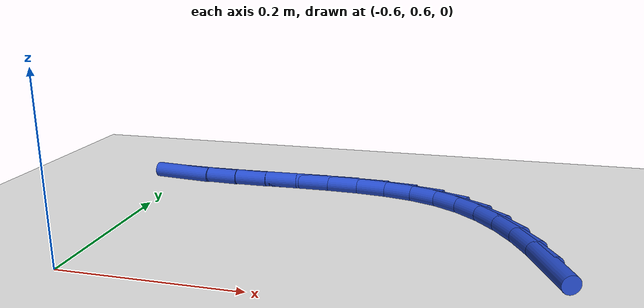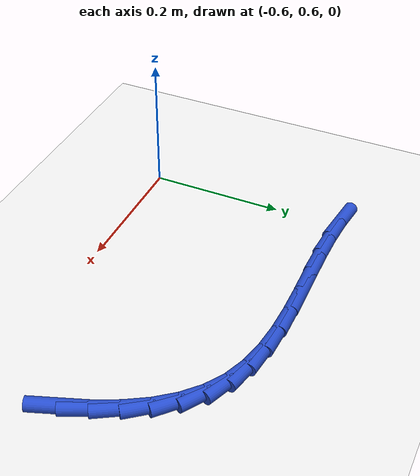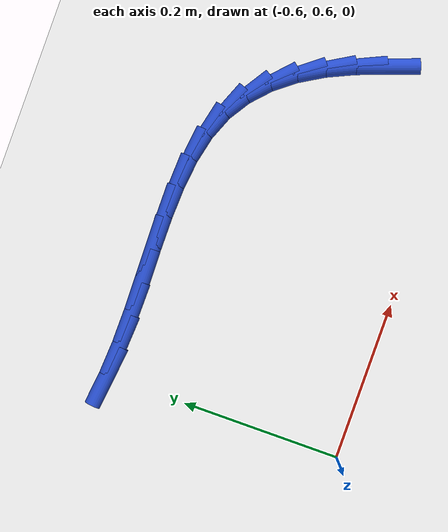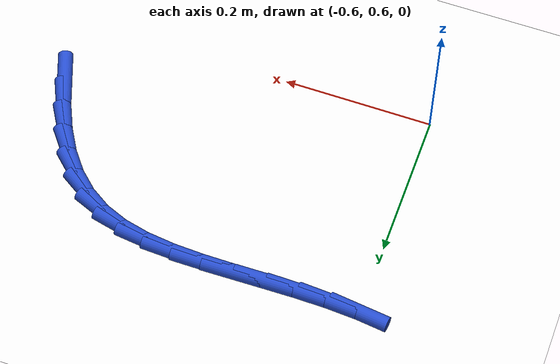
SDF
<sdf version="1.6">
 <world name="default">
  <model name="ground_plane">
   <static>1</static>
   <link name="link">
    <collision name="collision">
     <geometry><plane><normal>0 0 1</normal><size>100 100</size></plane></geometry>
     <surface><friction><ode><mu>100</mu><mu2>50</mu2></ode></friction></surface>
    </collision>
    <visual name="visual">
     <cast_shadows>0</cast_shadows>
     <geometry><plane><normal>0 0 1</normal><size>100 100</size></plane></geometry>
     <material>
      <script><uri>file://media/materials/scripts/gazebo.material</uri><name>Gazebo/WhiteGlow</name></script>
     </material>
    </visual>
   </link>
  </model>
  <model name="line">
   <link name="link_17">
    <pose>-0.12415609357749036 0.7029722116935134 0.01 0 1.57 -1.2228854900770947</pose>
    <collision name="collision">
     <geometry><cylinder><radius>0.01</radius><length>0.08</length></cylinder></geometry>
    </collision>
    <visual name="visual">
     <material>
      <script><name>Gazebo/Blue</name><uri>file://media/materials/scripts/gazebo.material</uri></script>
     </material>
     <geometry><cylinder><radius>0.01</radius><length>0.08</length></cylinder></geometry>
    </visual>
   </link>
   <link name="link_18">
    <pose>-0.13775269819336816 0.7404632532780194 0.01 0 1.57 -1.1405967226817182</pose>
    <collision name="collision">
     <geometry><cylinder><radius>0.01</radius><length>0.08</length></cylinder></geometry>
    </collision>
    <visual name="visual">
     <material>
      <script><name>Gazebo/Blue</name><uri>file://media/materials/scripts/gazebo.material</uri></script>
     </material>
     <geometry><cylinder><radius>0.01</radius><length>0.08</length></cylinder></geometry>
    </visual>
   </link>
   <link name="link_19">
    <pose>-0.1535931802391043 0.7749844387114908 0.01 0 1.57 -1.0363486107870967</pose>
    <collision name="collision">
     <geometry><cylinder><radius>0.01</radius><length>0.08</length></cylinder></geometry>
    </collision>
    <visual name="visual">
     <material>
      <script><name>Gazebo/Blue</name><uri>file://media/materials/scripts/gazebo.material</uri></script>
     </material>
     <geometry><cylinder><radius>0.01</radius><length>0.08</length></cylinder></geometry>
    </visual>
   </link>
   <link name="link_20">
    <pose>-0.17198768335682113 0.8060611021103483 0.01 0 1.57 -0.9066361919721067</pose>
    <collision name="collision">
     <geometry><cylinder><radius>0.01</radius><length>0.08</length></cylinder></geometry>
    </collision>
    <visual name="visual">
     <material>
      <script><name>Gazebo/Blue</name><uri>file://media/materials/scripts/gazebo.material</uri></script>
     </material>
     <geometry><cylinder><radius>0.01</radius><length>0.08</length></cylinder></geometry>
    </visual>
   </link>
   <link name="link_21">
    <pose>-0.19324635118864075 0.8332185775910127 0.01 0 1.57 -0.7500426726153248</pose>
    <collision name="collision">
     <geometry><cylinder><radius>0.01</radius><length>0.08</length></cylinder></geometry>
    </collision>
    <visual name="visual">
     <material>
      <script><name>Gazebo/Blue</name><uri>file://media/materials/scripts/gazebo.material</uri></script>
     </material>
     <geometry><cylinder><radius>0.01</radius><length>0.08</length></cylinder></geometry>
    </visual>
   </link>
   <link name="link_22">
    <pose>-0.2176793273766857 0.8559821992699053 0.01 0 1.57 -0.570023065147748</pose>
    <collision name="collision">
     <geometry><cylinder><radius>0.01</radius><length>0.08</length></cylinder></geometry>
    </collision>
    <visual name="visual">
     <material>
      <script><name>Gazebo/Blue</name><uri>file://media/materials/scripts/gazebo.material</uri></script>
     </material>
     <geometry><cylinder><radius>0.01</radius><length>0.08</length></cylinder></geometry>
    </visual>
   </link>
   <link name="link_23">
    <pose>-0.2455967555630778 0.8738773012634458 0.01 0 1.57 -0.3810829290091312</pose>
    <collision name="collision">
     <geometry><cylinder><radius>0.01</radius><length>0.08</length></cylinder></geometry>
    </collision>
    <visual name="visual">
     <material>
      <script><name>Gazebo/Blue</name><uri>file://media/materials/scripts/gazebo.material</uri></script>
     </material>
     <geometry><cylinder><radius>0.01</radius><length>0.08</length></cylinder></geometry>
    </visual>
   </link>
   <link name="link_24">
    <pose>-0.27723013281030456 0.8865518134539518 0.01 0 1.57 -0.22504649909694271</pose>
    <collision name="collision">
     <geometry><cylinder><radius>0.01</radius><length>0.08</length></cylinder></geometry>
    </collision>
    <visual name="visual">
     <material>
      <script><name>Gazebo/Blue</name><uri>file://media/materials/scripts/gazebo.material</uri></script>
     </material>
     <geometry><cylinder><radius>0.01</radius><length>0.08</length></cylinder></geometry>
    </visual>
   </link>
   <link name="link_25">
    <pose>-0.31222728002615074 0.8945635110794126 0.01 0 1.57 -0.11384668438913959</pose>
    <collision name="collision">
     <geometry><cylinder><radius>0.01</radius><length>0.08</length></cylinder></geometry>
    </collision>
    <visual name="visual">
     <material>
      <script><name>Gazebo/Blue</name><uri>file://media/materials/scripts/gazebo.material</uri></script>
     </material>
     <geometry><cylinder><radius>0.01</radius><length>0.08</length></cylinder></geometry>
    </visual>
   </link>
   <link name="link_26">
    <pose>-0.3499734593183888 0.8988794509680602 0.01 0 1.57 -0.039829299469846584</pose>
    <collision name="collision">
     <geometry><cylinder><radius>0.01</radius><length>0.08</length></cylinder></geometry>
    </collision>
    <visual name="visual">
     <material>
      <script><name>Gazebo/Blue</name><uri>file://media/materials/scripts/gazebo.material</uri></script>
     </material>
     <geometry><cylinder><radius>0.01</radius><length>0.08</length></cylinder></geometry>
    </visual>
   </link>
   <link name="link_27">
    <pose>-0.3898526737400347 0.900468652586334 0.01 0 1.57 0.004070809413849645</pose>
    <collision name="collision">
     <geometry><cylinder><radius>0.01</radius><length>0.08</length></cylinder></geometry>
    </collision>
    <visual name="visual">
     <material>
      <script><name>Gazebo/Blue</name><uri>file://media/materials/scripts/gazebo.material</uri></script>
     </material>
     <geometry><cylinder><radius>0.01</radius><length>0.08</length></cylinder></geometry>
    </visual>
   </link>
   <link name="link_28">
    <pose>-0.4312489263441052 0.900300135400674 0.01 0 1.57 0.02262681780327256</pose>
    <collision name="collision">
     <geometry><cylinder><radius>0.01</radius><length>0.08</length></cylinder></geometry>
    </collision>
    <visual name="visual">
     <material>
      <script><name>Gazebo/Blue</name><uri>file://media/materials/scripts/gazebo.material</uri></script>
     </material>
     <geometry><cylinder><radius>0.01</radius><length>0.08</length></cylinder></geometry>
    </visual>
   </link>
   <link name="link_29">
    <pose>-0.473546220183617 0.8993429188775187 0.01 0 1.57 0.018242544801845822</pose>
    <collision name="collision">
     <geometry><cylinder><radius>0.01</radius><length>0.08</length></cylinder></geometry>
    </collision>
    <visual name="visual">
     <material>
      <script><name>Gazebo/Blue</name><uri>file://media/materials/scripts/gazebo.material</uri></script>
     </material>
     <geometry><cylinder><radius>0.01</radius><length>0.08</length></cylinder></geometry>
    </visual>
   </link>
   <link name="link_30">
    <pose>-0.5161285583115862 0.8985660224833086 0.01 0 1.57 -0.008814706330348086</pose>
    <collision name="collision">
     <geometry><cylinder><radius>0.01</radius><length>0.08</length></cylinder></geometry>
    </collision>
    <visual name="visual">
     <material>
      <script><name>Gazebo/Blue</name><uri>file://media/materials/scripts/gazebo.material</uri></script>
     </material>
     <geometry><cylinder><radius>0.01</radius><length>0.08</length></cylinder></geometry>
    </visual>
   </link>
   <link name="link_31">
    <pose>-0.55837994378103 0.8989384656844828 0.01 0 1.57 -0.057781774671474884</pose>
    <collision name="collision">
     <geometry><cylinder><radius>0.01</radius><length>0.08</length></cylinder></geometry>
    </collision>
    <visual name="visual">
     <material>
      <script><name>Gazebo/Blue</name><uri>file://media/materials/scripts/gazebo.material</uri></script>
     </material>
     <geometry><cylinder><radius>0.01</radius><length>0.08</length></cylinder></geometry>
    </visual>
   </link>
   <link name="link_32">
    <pose>-0.5997562188710199 0.9013319245886888 0.01 0 1.57 -0.11715414385520997</pose>
    <collision name="collision">
     <geometry><cylinder><radius>0.01</radius><length>0.08</length></cylinder></geometry>
    </collision>
    <visual name="visual">
     <material>
      <script><name>Gazebo/Blue</name><uri>file://media/materials/scripts/gazebo.material</uri></script>
     </material>
     <geometry><cylinder><radius>0.01</radius><length>0.08</length></cylinder></geometry>
    </visual>
   </link>
  </model>
 </world>
</sdf>
